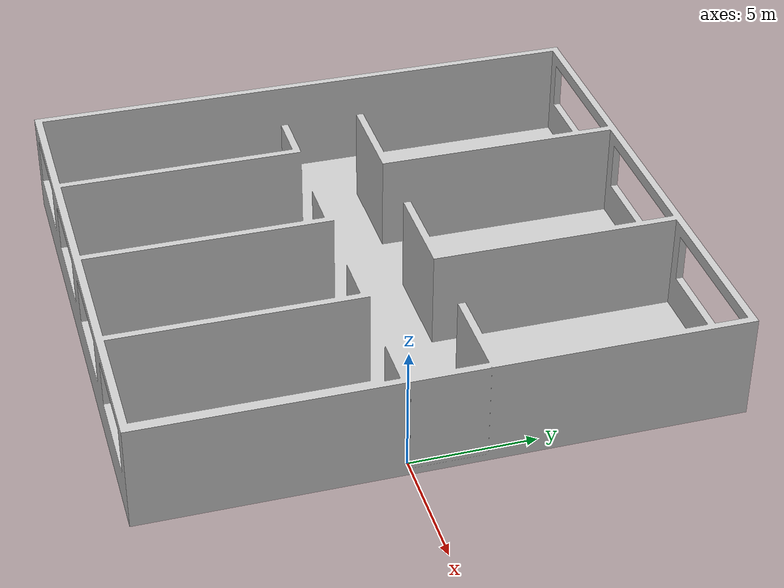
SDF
<?xml version="1.0"?>
<sdf version="1.6">
  <model name="office">
    <static>true</static>
    <link name="body">
      <visual name="visual">
        <geometry>
          <mesh>
            <uri>model://office/meshes/office.stl</uri>
            <scale>0.001 0.001 0.001</scale>
          </mesh>
        </geometry>
        <material>
          <ambient>0.7 0.7 0.7 1</ambient>
          <diffuse>0.8 0.8 0.8 1</diffuse>
          <specular>0.1 0.1 0.1 1</specular>
        </material>
      </visual>
      <collision name="collision">
        <geometry>
          <mesh>
            <uri>model://office/meshes/office.stl</uri>
            <scale>0.001 0.001 0.001</scale>
          </mesh>
        </geometry>
      </collision>
    </link>
  </model>
</sdf>
